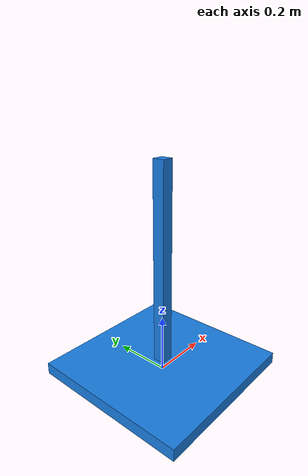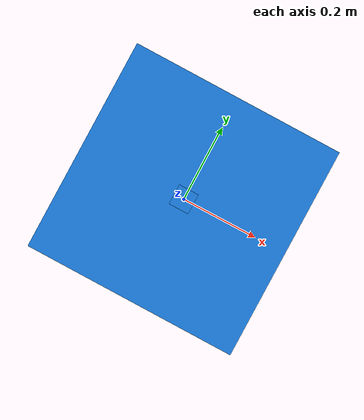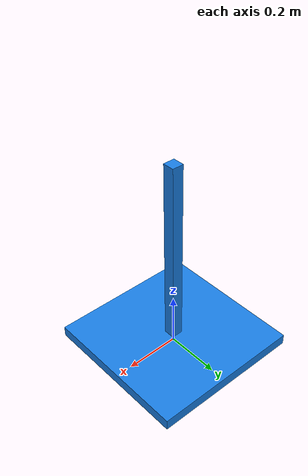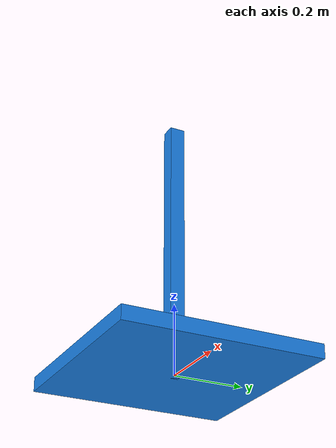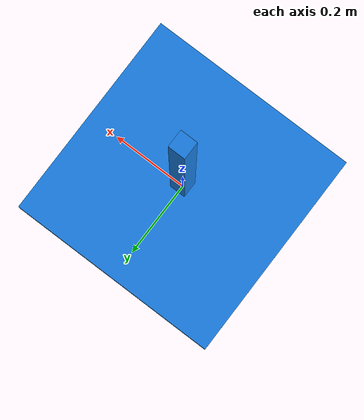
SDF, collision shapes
<?xml version="1.0" ?>
<sdf version="1.5">
  <model name="cafe_table">
    <static>true</static>
    <link name="link">
      <collision name="surface">
        <pose>0 0 0.755 0 0 0</pose>
        <geometry>
          <box>
            <size>0 0 0.755 0 0 0</size>
          </box>
        </geometry>
      </collision>

      <collision name="column">
        <pose>0 0 0.37 0 0 0</pose>
        <geometry>
          <box>
            <size>0.042 0.042 0.74</size>
          </box>
        </geometry>
      </collision>

      <collision name="base">
        <pose>0 0 0.02 0 0 0</pose>
        <geometry>
          <box>
            <size>0.56 0.56 0.04</size>
          </box>
        </geometry>
      </collision>

      <visual name="visual">
        <geometry>
          <mesh>
            <uri>model://cafe_table/meshes/cafe_table.dae</uri>
          </mesh>
        </geometry>
        <material>
          <ambient>0.2 0.2 0.9 1</ambient>
          <diffuse>0.1 0.5 0.9 1</diffuse>
          <specular>0.1 0.1 0.1 1</specular>
        </material>
      </visual>
    </link>
  </model>
</sdf>
